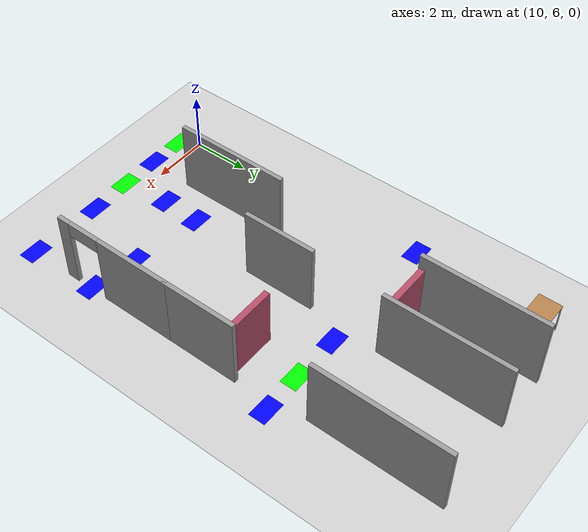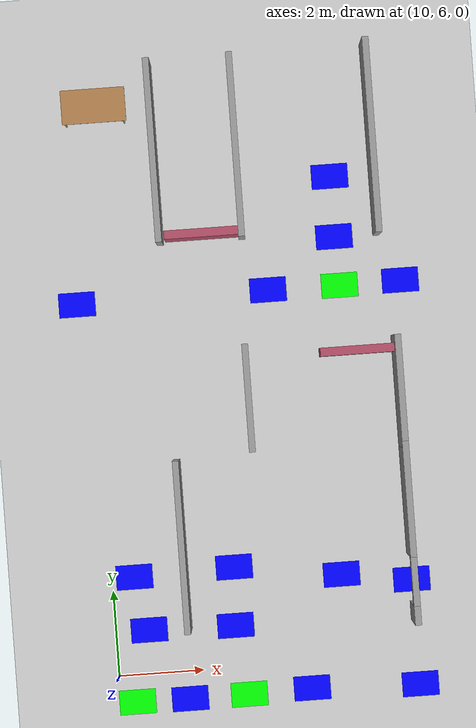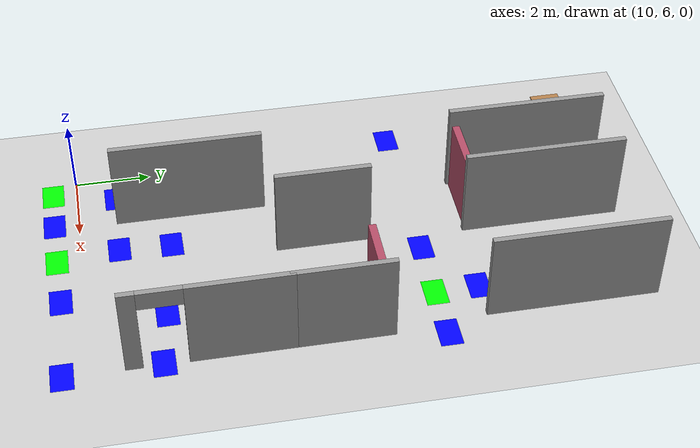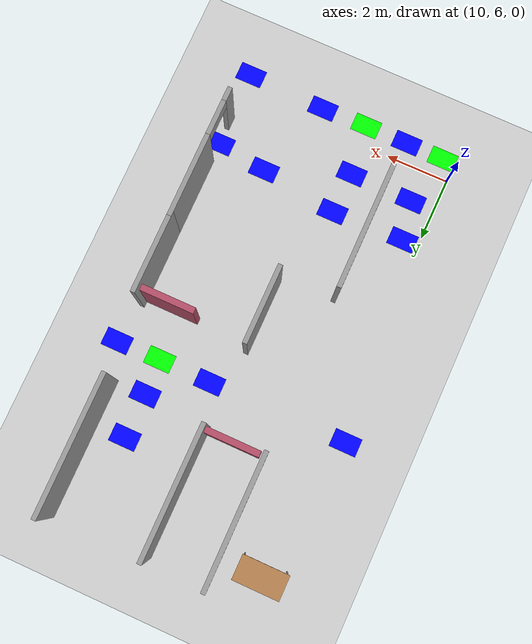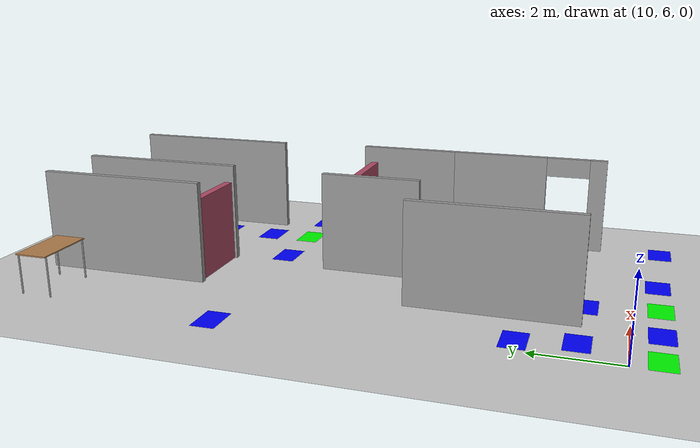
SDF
<sdf version="1.6">
 <world name="default">
  <model name="ground_plane">
   <pose>0 0 0.001 0 -0 0</pose>
   <static>1</static>
   <link name="link">
    <collision name="collision">
     <geometry><plane><normal>0 0 1</normal><size>100 100</size></plane></geometry>
     <surface><friction><ode><mu>100</mu><mu2>50</mu2></ode></friction></surface>
    </collision>
    <visual name="visual">
     <cast_shadows>0</cast_shadows>
     <geometry><plane><normal>0 0 1</normal><size>100 100</size></plane></geometry>
     <material>
      <script><uri>file://media/materials/scripts/gazebo.material</uri><name>Gazebo/Grey</name></script>
     </material>
    </visual>
   </link>
  </model>
  <model name="table_9">
   <static>1</static>
   <link name="link">
    <collision name="surface">
     <pose>0 0 1 0 -0 0</pose>
     <geometry><box><size>1.5 0.8 0.03</size></box></geometry>
     <surface><friction><ode><mu>0.6</mu><mu2>0.6</mu2></ode></friction></surface>
    </collision>
    <visual name="visual1">
     <pose>0 0 1 0 -0 0</pose>
     <geometry><box><size>1.5 0.8 0.03</size></box></geometry>
     <material>
      <script><uri>file://media/materials/scripts/gazebo.material</uri><name>Gazebo/Wood</name></script>
     </material>
    </visual>
    <collision name="front_left_leg">
     <pose>0.68 0.38 0.5 0 -0 0</pose>
     <geometry><cylinder><radius>0.02</radius><length>1</length></cylinder></geometry>
    </collision>
    <visual name="front_left_leg">
     <pose>0.68 0.38 0.5 0 -0 0</pose>
     <geometry><cylinder><radius>0.02</radius><length>1</length></cylinder></geometry>
     <material>
      <script><uri>file://media/materials/scripts/gazebo.material</uri><name>Gazebo/Grey</name></script>
     </material>
    </visual>
    <collision name="front_right_leg">
     <pose>0.68 -0.38 0.5 0 -0 0</pose>
     <geometry><cylinder><radius>0.02</radius><length>1</length></cylinder></geometry>
    </collision>
    <visual name="front_right_leg">
     <pose>0.68 -0.38 0.5 0 -0 0</pose>
     <geometry><cylinder><radius>0.02</radius><length>1</length></cylinder></geometry>
     <material>
      <script><uri>file://media/materials/scripts/gazebo.material</uri><name>Gazebo/Grey</name></script>
     </material>
    </visual>
    <collision name="back_right_leg">
     <pose>-0.68 -0.38 0.5 0 -0 0</pose>
     <geometry><cylinder><radius>0.02</radius><length>1</length></cylinder></geometry>
    </collision>
    <visual name="back_right_leg">
     <pose>-0.68 -0.38 0.5 0 -0 0</pose>
     <geometry><cylinder><radius>0.02</radius><length>1</length></cylinder></geometry>
     <material>
      <script><uri>file://media/materials/scripts/gazebo.material</uri><name>Gazebo/Grey</name></script>
     </material>
    </visual>
    <collision name="back_left_leg">
     <pose>-0.68 0.38 0.5 0 -0 0</pose>
     <geometry><cylinder><radius>0.02</radius><length>1</length></cylinder></geometry>
    </collision>
    <visual name="back_left_leg">
     <pose>-0.68 0.38 0.5 0 -0 0</pose>
     <geometry><cylinder><radius>0.02</radius><length>1</length></cylinder></geometry>
     <material>
      <script><uri>file://media/materials/scripts/gazebo.material</uri><name>Gazebo/Grey</name></script>
     </material>
    </visual>
   </link>
   <pose>10.3778 19.3786 0.001 0 -0 0</pose>
  </model>
  <model name="corridor_6">
   <link name="link">
    <pose>0 0 0.001 0 -0 0</pose>
    <inertial>
     <mass>0.0352517</mass>
     <inertia>
      <ixx>0.00099707</ixx>
      <ixy>0</ixy>
      <ixz>0</ixz>
      <iyy>0.00220147</iyy>
      <iyz>0</iyz>
      <izz>0.0031692</izz>
     </inertia>
     <pose>0 0 0.001 0 -0 0</pose>
    </inertial>
    <visual name="visual">
     <geometry><box><size>0.862743 0.578289 1e-06</size></box></geometry>
     <material>
      <script><name>Gazebo/Grey</name><uri>file://media/materials/scripts/gazebo.material</uri></script>
      <ambient>0 1 0 1</ambient>
      <diffuse>0 1 0 1</diffuse>
      <specular>0 1 0 1</specular>
      <emissive>0 1 0 1</emissive>
      <shader type="vertex"><normal_map>__default__</normal_map></shader>
     </material>
     <pose>0 0 0.001 0 -0 0</pose>
    </visual>
    <collision name="collision">
     <pose>0 0 0.001 0 -0 0</pose>
     <geometry><box><size>0.862743 0.578289 0.000477</size></box></geometry>
     <surface>
      <friction>
       <ode><mu>1</mu><mu2>1</mu2><fdir1>0 0 0</fdir1><slip1>0</slip1><slip2>0</slip2></ode>
       <torsional>
        <coefficient>1</coefficient>
        <patch_radius>0</patch_radius>
        <surface_radius>0</surface_radius>
        <use_patch_radius>1</use_patch_radius>
        <ode><slip>0</slip></ode>
       </torsional>
      </friction>
      <bounce><restitution_coefficient>0</restitution_coefficient><threshold>1e+06</threshold></bounce>
      <contact>
       <collide_without_contact>0</collide_without_contact>
       <collide_without_contact_bitmask>1</collide_without_contact_bitmask>
       <collide_bitmask>1</collide_bitmask>
       <ode>
        <soft_cfm>0</soft_cfm>
        <soft_erp>0.2</soft_erp>
        <kp>1e+13</kp>
        <kd>1</kd>
        <max_vel>0.01</max_vel>
        <min_depth>0</min_depth>
       </ode>
       <bullet>
        <split_impulse>1</split_impulse>
        <split_impulse_penetration_threshold>-0.01</split_impulse_penetration_threshold>
        <soft_cfm>0</soft_cfm>
        <soft_erp>0.2</soft_erp>
        <kp>1e+13</kp>
        <kd>1</kd>
       </bullet>
      </contact>
     </surface>
    </collision>
   </link>
   <static>1</static>
   <pose>15.8327 14.8096 0 0 -0 0</pose>
  </model>
  <model name="intersection_11">
   <link name="link">
    <pose>0 0 0.001 0 -0 0</pose>
    <inertial>
     <mass>0.0352517</mass>
     <inertia>
      <ixx>0.000997067</ixx>
      <ixy>0</ixy>
      <ixz>0</ixz>
      <iyy>0.00220147</iyy>
      <iyz>0</iyz>
      <izz>0.0031692</izz>
     </inertia>
     <pose>0 0 0.001 0 -0 0</pose>
    </inertial>
    <visual name="visual">
     <geometry><box><size>0.862743 0.578289 1e-06</size></box></geometry>
     <material>
      <script><name>Gazebo/Grey</name><uri>file://media/materials/scripts/gazebo.material</uri></script>
      <ambient>0 0 1 1</ambient>
      <diffuse>0 0 1 1</diffuse>
      <specular>0 0 1 1</specular>
      <emissive>0 0 1 1</emissive>
      <shader type="vertex"><normal_map>__default__</normal_map></shader>
     </material>
     <pose>0 0 0.001 0 -0 0</pose>
    </visual>
    <collision name="collision">
     <pose>0 0 0.001 0 -0 0</pose>
     <geometry><box><size>0.862743 0.578289 0.000477</size></box></geometry>
     <surface>
      <friction>
       <ode><mu>1</mu><mu2>1</mu2><fdir1>0 0 0</fdir1><slip1>0</slip1><slip2>0</slip2></ode>
       <torsional>
        <coefficient>1</coefficient>
        <patch_radius>0</patch_radius>
        <surface_radius>0</surface_radius>
        <use_patch_radius>1</use_patch_radius>
        <ode><slip>0</slip></ode>
       </torsional>
      </friction>
      <bounce><restitution_coefficient>0</restitution_coefficient><threshold>1e+06</threshold></bounce>
      <contact>
       <collide_without_contact>0</collide_without_contact>
       <collide_without_contact_bitmask>1</collide_without_contact_bitmask>
       <collide_bitmask>1</collide_bitmask>
       <ode>
        <soft_cfm>0</soft_cfm>
        <soft_erp>0.2</soft_erp>
        <kp>1e+13</kp>
        <kd>1</kd>
        <max_vel>0.01</max_vel>
        <min_depth>0</min_depth>
       </ode>
       <bullet>
        <split_impulse>1</split_impulse>
        <split_impulse_penetration_threshold>-0.01</split_impulse_penetration_threshold>
        <soft_cfm>0</soft_cfm>
        <soft_erp>0.2</soft_erp>
        <kp>1e+13</kp>
        <kd>1</kd>
       </bullet>
      </contact>
     </surface>
    </collision>
   </link>
   <static>1</static>
   <pose>15.7862 15.9606 0 0 -0 0</pose>
  </model>
  <model name="intersection_12">
   <link name="link">
    <pose>0 0 0.001 0 -0 0</pose>
    <inertial>
     <mass>0.0352517</mass>
     <inertia>
      <ixx>0.000997067</ixx>
      <ixy>0</ixy>
      <ixz>0</ixz>
      <iyy>0.00220147</iyy>
      <iyz>0</iyz>
      <izz>0.0031692</izz>
     </inertia>
     <pose>0 0 0.001 0 -0 0</pose>
    </inertial>
    <visual name="visual">
     <geometry><box><size>0.862743 0.578289 1e-06</size></box></geometry>
     <material>
      <script><name>Gazebo/Grey</name><uri>file://media/materials/scripts/gazebo.material</uri></script>
      <ambient>0 0 1 1</ambient>
      <diffuse>0 0 1 1</diffuse>
      <specular>0 0 1 1</specular>
      <emissive>0 0 1 1</emissive>
      <shader type="vertex"><normal_map>__default__</normal_map></shader>
     </material>
     <pose>0 0 0.001 0 -0 0</pose>
    </visual>
    <collision name="collision">
     <pose>0 0 0.001 0 -0 0</pose>
     <geometry><box><size>0.862743 0.578289 0.000477</size></box></geometry>
     <surface>
      <friction>
       <ode><mu>1</mu><mu2>1</mu2><fdir1>0 0 0</fdir1><slip1>0</slip1><slip2>0</slip2></ode>
       <torsional>
        <coefficient>1</coefficient>
        <patch_radius>0</patch_radius>
        <surface_radius>0</surface_radius>
        <use_patch_radius>1</use_patch_radius>
        <ode><slip>0</slip></ode>
       </torsional>
      </friction>
      <bounce><restitution_coefficient>0</restitution_coefficient><threshold>1e+06</threshold></bounce>
      <contact>
       <collide_without_contact>0</collide_without_contact>
       <collide_without_contact_bitmask>1</collide_without_contact_bitmask>
       <collide_bitmask>1</collide_bitmask>
       <ode>
        <soft_cfm>0</soft_cfm>
        <soft_erp>0.2</soft_erp>
        <kp>1e+13</kp>
        <kd>1</kd>
        <max_vel>0.01</max_vel>
        <min_depth>0</min_depth>
       </ode>
       <bullet>
        <split_impulse>1</split_impulse>
        <split_impulse_penetration_threshold>-0.01</split_impulse_penetration_threshold>
        <soft_cfm>0</soft_cfm>
        <soft_erp>0.2</soft_erp>
        <kp>1e+13</kp>
        <kd>1</kd>
       </bullet>
      </contact>
     </surface>
    </collision>
   </link>
   <static>1</static>
   <pose>17.0289 7.78146 0 0 -0 0</pose>
  </model>
  <model name="intersection_14">
   <link name="link">
    <pose>0 0 0.001 0 -0 0</pose>
    <inertial>
     <mass>0.0352517</mass>
     <inertia>
      <ixx>0.000997067</ixx>
      <ixy>0</ixy>
      <ixz>0</ixz>
      <iyy>0.00220147</iyy>
      <iyz>0</iyz>
      <izz>0.0031692</izz>
     </inertia>
     <pose>0 0 0.001 0 -0 0</pose>
    </inertial>
    <visual name="visual">
     <geometry><box><size>0.862743 0.578289 1e-06</size></box></geometry>
     <material>
      <script><name>Gazebo/Grey</name><uri>file://media/materials/scripts/gazebo.material</uri></script>
      <ambient>0 0 1 1</ambient>
      <diffuse>0 0 1 1</diffuse>
      <specular>0 0 1 1</specular>
      <emissive>0 0 1 1</emissive>
      <shader type="vertex"><normal_map>__default__</normal_map></shader>
     </material>
     <pose>0 0 0.001 0 -0 0</pose>
    </visual>
    <collision name="collision">
     <pose>0 0 0.001 0 -0 0</pose>
     <geometry><box><size>0.862743 0.578289 0.000477</size></box></geometry>
     <surface>
      <friction>
       <ode><mu>1</mu><mu2>1</mu2><fdir1>0 0 0</fdir1><slip1>0</slip1><slip2>0</slip2></ode>
       <torsional>
        <coefficient>1</coefficient>
        <patch_radius>0</patch_radius>
        <surface_radius>0</surface_radius>
        <use_patch_radius>1</use_patch_radius>
        <ode><slip>0</slip></ode>
       </torsional>
      </friction>
      <bounce><restitution_coefficient>0</restitution_coefficient><threshold>1e+06</threshold></bounce>
      <contact>
       <collide_without_contact>0</collide_without_contact>
       <collide_without_contact_bitmask>1</collide_without_contact_bitmask>
       <collide_bitmask>1</collide_bitmask>
       <ode>
        <soft_cfm>0</soft_cfm>
        <soft_erp>0.2</soft_erp>
        <kp>1e+13</kp>
        <kd>1</kd>
        <max_vel>0.01</max_vel>
        <min_depth>0</min_depth>
       </ode>
       <bullet>
        <split_impulse>1</split_impulse>
        <split_impulse_penetration_threshold>-0.01</split_impulse_penetration_threshold>
        <soft_cfm>0</soft_cfm>
        <soft_erp>0.2</soft_erp>
        <kp>1e+13</kp>
        <kd>1</kd>
       </bullet>
      </contact>
     </surface>
    </collision>
   </link>
   <static>1</static>
   <pose>12.8142 6.98995 0 0 -0 0</pose>
  </model>
  <model name="intersection_19">
   <link name="link">
    <pose>0 0 0.001 0 -0 0</pose>
    <inertial>
     <mass>0.0352517</mass>
     <inertia>
      <ixx>0.000997067</ixx>
      <ixy>0</ixy>
      <ixz>0</ixz>
      <iyy>0.00220147</iyy>
      <iyz>0</iyz>
      <izz>0.0031692</izz>
     </inertia>
     <pose>0 0 0.001 0 -0 0</pose>
    </inertial>
    <visual name="visual">
     <geometry><box><size>0.862743 0.578289 1e-06</size></box></geometry>
     <material>
      <script><name>Gazebo/Grey</name><uri>file://media/materials/scripts/gazebo.material</uri></script>
      <ambient>0 0 1 1</ambient>
      <diffuse>0 0 1 1</diffuse>
      <specular>0 0 1 1</specular>
      <emissive>0 0 1 1</emissive>
      <shader type="vertex"><normal_map>__default__</normal_map></shader>
     </material>
     <pose>0 0 0.001 0 -0 0</pose>
    </visual>
    <collision name="collision">
     <pose>0 0 0.001 0 -0 0</pose>
     <geometry><box><size>0.862743 0.578289 0.000477</size></box></geometry>
     <surface>
      <friction>
       <ode><mu>1</mu><mu2>1</mu2><fdir1>0 0 0</fdir1><slip1>0</slip1><slip2>0</slip2></ode>
       <torsional>
        <coefficient>1</coefficient>
        <patch_radius>0</patch_radius>
        <surface_radius>0</surface_radius>
        <use_patch_radius>1</use_patch_radius>
        <ode><slip>0</slip></ode>
       </torsional>
      </friction>
      <bounce><restitution_coefficient>0</restitution_coefficient><threshold>1e+06</threshold></bounce>
      <contact>
       <collide_without_contact>0</collide_without_contact>
       <collide_without_contact_bitmask>1</collide_without_contact_bitmask>
       <collide_bitmask>1</collide_bitmask>
       <ode>
        <soft_cfm>0</soft_cfm>
        <soft_erp>0.2</soft_erp>
        <kp>1e+13</kp>
        <kd>1</kd>
        <max_vel>0.01</max_vel>
        <min_depth>0</min_depth>
       </ode>
       <bullet>
        <split_impulse>1</split_impulse>
        <split_impulse_penetration_threshold>-0.01</split_impulse_penetration_threshold>
        <soft_cfm>0</soft_cfm>
        <soft_erp>0.2</soft_erp>
        <kp>1e+13</kp>
        <kd>1</kd>
       </bullet>
      </contact>
     </surface>
    </collision>
   </link>
   <static>1</static>
   <pose>10.7757 7.03031 0 0 -0 0</pose>
  </model>
  <model name="corridor_7">
   <link name="link">
    <pose>0 0 0.001 0 -0 0</pose>
    <inertial>
     <mass>0.0352517</mass>
     <inertia>
      <ixx>0.00099707</ixx>
      <ixy>0</ixy>
      <ixz>0</ixz>
      <iyy>0.00220147</iyy>
      <iyz>0</iyz>
      <izz>0.0031692</izz>
     </inertia>
     <pose>0 0 0.001 0 -0 0</pose>
    </inertial>
    <visual name="visual">
     <geometry><box><size>0.862743 0.578289 1e-06</size></box></geometry>
     <material>
      <script><name>Gazebo/Grey</name><uri>file://media/materials/scripts/gazebo.material</uri></script>
      <ambient>0 1 0 1</ambient>
      <diffuse>0 1 0 1</diffuse>
      <specular>0 1 0 1</specular>
      <emissive>0 1 0 1</emissive>
      <shader type="vertex"><normal_map>__default__</normal_map></shader>
     </material>
     <pose>0 0 0.001 0 -0 0</pose>
    </visual>
    <collision name="collision">
     <pose>0 0 0.001 0 -0 0</pose>
     <geometry><box><size>0.862743 0.578289 0.000477</size></box></geometry>
     <surface>
      <friction>
       <ode><mu>1</mu><mu2>1</mu2><fdir1>0 0 0</fdir1><slip1>0</slip1><slip2>0</slip2></ode>
       <torsional>
        <coefficient>1</coefficient>
        <patch_radius>0</patch_radius>
        <surface_radius>0</surface_radius>
        <use_patch_radius>1</use_patch_radius>
        <ode><slip>0</slip></ode>
       </torsional>
      </friction>
      <bounce><restitution_coefficient>0</restitution_coefficient><threshold>1e+06</threshold></bounce>
      <contact>
       <collide_without_contact>0</collide_without_contact>
       <collide_without_contact_bitmask>1</collide_without_contact_bitmask>
       <collide_bitmask>1</collide_bitmask>
       <ode>
        <soft_cfm>0</soft_cfm>
        <soft_erp>0.2</soft_erp>
        <kp>1e+13</kp>
        <kd>1</kd>
        <max_vel>0.01</max_vel>
        <min_depth>0</min_depth>
       </ode>
       <bullet>
        <split_impulse>1</split_impulse>
        <split_impulse_penetration_threshold>-0.01</split_impulse_penetration_threshold>
        <soft_cfm>0</soft_cfm>
        <soft_erp>0.2</soft_erp>
        <kp>1e+13</kp>
        <kd>1</kd>
       </bullet>
      </contact>
     </surface>
    </collision>
   </link>
   <static>1</static>
   <pose>10.3849 5.35999 0 0 -0 0</pose>
  </model>
  <model name="corridor_8">
   <link name="link">
    <pose>0 0 0.001 0 -0 0</pose>
    <inertial>
     <mass>0.0352517</mass>
     <inertia>
      <ixx>0.00099707</ixx>
      <ixy>0</ixy>
      <ixz>0</ixz>
      <iyy>0.00220147</iyy>
      <iyz>0</iyz>
      <izz>0.0031692</izz>
     </inertia>
     <pose>0 0 0.001 0 -0 0</pose>
    </inertial>
    <visual name="visual">
     <geometry><box><size>0.862743 0.578289 1e-06</size></box></geometry>
     <material>
      <script><name>Gazebo/Grey</name><uri>file://media/materials/scripts/gazebo.material</uri></script>
      <ambient>0 1 0 1</ambient>
      <diffuse>0 1 0 1</diffuse>
      <specular>0 1 0 1</specular>
      <emissive>0 1 0 1</emissive>
      <shader type="vertex"><normal_map>__default__</normal_map></shader>
     </material>
     <pose>0 0 0.001 0 -0 0</pose>
    </visual>
    <collision name="collision">
     <pose>0 0 0.001 0 -0 0</pose>
     <geometry><box><size>0.862743 0.578289 0.000477</size></box></geometry>
     <surface>
      <friction>
       <ode><mu>1</mu><mu2>1</mu2><fdir1>0 0 0</fdir1><slip1>0</slip1><slip2>0</slip2></ode>
       <torsional>
        <coefficient>1</coefficient>
        <patch_radius>0</patch_radius>
        <surface_radius>0</surface_radius>
        <use_patch_radius>1</use_patch_radius>
        <ode><slip>0</slip></ode>
       </torsional>
      </friction>
      <bounce><restitution_coefficient>0</restitution_coefficient><threshold>1e+06</threshold></bounce>
      <contact>
       <collide_without_contact>0</collide_without_contact>
       <collide_without_contact_bitmask>1</collide_without_contact_bitmask>
       <collide_bitmask>1</collide_bitmask>
       <ode>
        <soft_cfm>0</soft_cfm>
        <soft_erp>0.2</soft_erp>
        <kp>1e+13</kp>
        <kd>1</kd>
        <max_vel>0.01</max_vel>
        <min_depth>0</min_depth>
       </ode>
       <bullet>
        <split_impulse>1</split_impulse>
        <split_impulse_penetration_threshold>-0.01</split_impulse_penetration_threshold>
        <soft_cfm>0</soft_cfm>
        <soft_erp>0.2</soft_erp>
        <kp>1e+13</kp>
        <kd>1</kd>
       </bullet>
      </contact>
     </surface>
    </collision>
   </link>
   <static>1</static>
   <pose>13.022 5.35184 0 0 -0 0</pose>
  </model>
  <model name="intersection_7">
   <link name="link">
    <pose>0 0 0.001 0 -0 0</pose>
    <inertial>
     <mass>0.0352517</mass>
     <inertia>
      <ixx>0.000997067</ixx>
      <ixy>0</ixy>
      <ixz>0</ixz>
      <iyy>0.00220147</iyy>
      <iyz>0</iyz>
      <izz>0.0031692</izz>
     </inertia>
     <pose>0 0 0.001 0 -0 0</pose>
    </inertial>
    <visual name="visual">
     <geometry><box><size>0.862743 0.578289 1e-06</size></box></geometry>
     <material>
      <script><name>Gazebo/Grey</name><uri>file://media/materials/scripts/gazebo.material</uri></script>
      <ambient>0 0 1 1</ambient>
      <diffuse>0 0 1 1</diffuse>
      <specular>0 0 1 1</specular>
      <emissive>0 0 1 1</emissive>
      <shader type="vertex"><normal_map>__default__</normal_map></shader>
     </material>
     <pose>0 0 0.001 0 -0 0</pose>
    </visual>
    <collision name="collision">
     <pose>0 0 0.001 0 -0 0</pose>
     <geometry><box><size>0.862743 0.578289 0.000477</size></box></geometry>
     <surface>
      <friction>
       <ode><mu>1</mu><mu2>1</mu2><fdir1>0 0 0</fdir1><slip1>0</slip1><slip2>0</slip2></ode>
       <torsional>
        <coefficient>1</coefficient>
        <patch_radius>0</patch_radius>
        <surface_radius>0</surface_radius>
        <use_patch_radius>1</use_patch_radius>
        <ode><slip>0</slip></ode>
       </torsional>
      </friction>
      <bounce><restitution_coefficient>0</restitution_coefficient><threshold>1e+06</threshold></bounce>
      <contact>
       <collide_without_contact>0</collide_without_contact>
       <collide_without_contact_bitmask>1</collide_without_contact_bitmask>
       <collide_bitmask>1</collide_bitmask>
       <ode>
        <soft_cfm>0</soft_cfm>
        <soft_erp>0.2</soft_erp>
        <kp>1e+13</kp>
        <kd>1</kd>
        <max_vel>0.01</max_vel>
        <min_depth>0</min_depth>
       </ode>
       <bullet>
        <split_impulse>1</split_impulse>
        <split_impulse_penetration_threshold>-0.01</split_impulse_penetration_threshold>
        <soft_cfm>0</soft_cfm>
        <soft_erp>0.2</soft_erp>
        <kp>1e+13</kp>
        <kd>1</kd>
       </bullet>
      </contact>
     </surface>
    </collision>
   </link>
   <static>1</static>
   <pose>14.5085 5.39019 0 0 -0 0</pose>
  </model>
  <model name="intersection_21">
   <link name="link">
    <pose>0 0 0.001 0 -0 0</pose>
    <inertial>
     <mass>0.0352517</mass>
     <inertia>
      <ixx>0.000997067</ixx>
      <ixy>0</ixy>
      <ixz>0</ixz>
      <iyy>0.00220147</iyy>
      <iyz>0</iyz>
      <izz>0.0031692</izz>
     </inertia>
     <pose>0 0 0.001 0 -0 0</pose>
    </inertial>
    <visual name="visual">
     <geometry><box><size>0.862743 0.578289 1e-06</size></box></geometry>
     <material>
      <script><name>Gazebo/Grey</name><uri>file://media/materials/scripts/gazebo.material</uri></script>
      <ambient>0 0 1 1</ambient>
      <diffuse>0 0 1 1</diffuse>
      <specular>0 0 1 1</specular>
      <emissive>0 0 1 1</emissive>
      <shader type="vertex"><normal_map>__default__</normal_map></shader>
     </material>
     <pose>0 0 0.001 0 -0 0</pose>
    </visual>
    <collision name="collision">
     <pose>0 0 0.001 0 -0 0</pose>
     <geometry><box><size>0.862743 0.578289 0.000477</size></box></geometry>
     <surface>
      <friction>
       <ode><mu>1</mu><mu2>1</mu2><fdir1>0 0 0</fdir1><slip1>0</slip1><slip2>0</slip2></ode>
       <torsional>
        <coefficient>1</coefficient>
        <patch_radius>0</patch_radius>
        <surface_radius>0</surface_radius>
        <use_patch_radius>1</use_patch_radius>
        <ode><slip>0</slip></ode>
       </torsional>
      </friction>
      <bounce><restitution_coefficient>0</restitution_coefficient><threshold>1e+06</threshold></bounce>
      <contact>
       <collide_without_contact>0</collide_without_contact>
       <collide_without_contact_bitmask>1</collide_without_contact_bitmask>
       <collide_bitmask>1</collide_bitmask>
       <ode>
        <soft_cfm>0</soft_cfm>
        <soft_erp>0.2</soft_erp>
        <kp>1e+13</kp>
        <kd>1</kd>
        <max_vel>0.01</max_vel>
        <min_depth>0</min_depth>
       </ode>
       <bullet>
        <split_impulse>1</split_impulse>
        <split_impulse_penetration_threshold>-0.01</split_impulse_penetration_threshold>
        <soft_cfm>0</soft_cfm>
        <soft_erp>0.2</soft_erp>
        <kp>1e+13</kp>
        <kd>1</kd>
       </bullet>
      </contact>
     </surface>
    </collision>
   </link>
   <static>1</static>
   <pose>11.6248 5.3471 0 0 -0 0</pose>
  </model>
  <model name="intersection_47">
   <link name="link">
    <pose>0 0 0.001 0 -0 0</pose>
    <inertial>
     <mass>0.0352517</mass>
     <inertia>
      <ixx>0.000997067</ixx>
      <ixy>0</ixy>
      <ixz>0</ixz>
      <iyy>0.00220147</iyy>
      <iyz>0</iyz>
      <izz>0.0031692</izz>
     </inertia>
     <pose>0 0 0.001 0 -0 0</pose>
    </inertial>
    <visual name="visual">
     <geometry><box><size>0.862743 0.578289 1e-06</size></box></geometry>
     <material>
      <script><name>Gazebo/Grey</name><uri>file://media/materials/scripts/gazebo.material</uri></script>
      <ambient>0 0 1 1</ambient>
      <diffuse>0 0 1 1</diffuse>
      <specular>0 0 1 1</specular>
      <emissive>0 0 1 1</emissive>
      <shader type="vertex"><normal_map>__default__</normal_map></shader>
     </material>
     <pose>0 0 0.001 0 -0 0</pose>
    </visual>
    <collision name="collision">
     <pose>0 0 0.001 0 -0 0</pose>
     <geometry><box><size>0.862743 0.578289 0.000477</size></box></geometry>
     <surface>
      <friction>
       <ode><mu>1</mu><mu2>1</mu2><fdir1>0 0 0</fdir1><slip1>0</slip1><slip2>0</slip2></ode>
       <torsional>
        <coefficient>1</coefficient>
        <patch_radius>0</patch_radius>
        <surface_radius>0</surface_radius>
        <use_patch_radius>1</use_patch_radius>
        <ode><slip>0</slip></ode>
       </torsional>
      </friction>
      <bounce><restitution_coefficient>0</restitution_coefficient><threshold>1e+06</threshold></bounce>
      <contact>
       <collide_without_contact>0</collide_without_contact>
       <collide_without_contact_bitmask>1</collide_without_contact_bitmask>
       <collide_bitmask>1</collide_bitmask>
       <ode>
        <soft_cfm>0</soft_cfm>
        <soft_erp>0.2</soft_erp>
        <kp>1e+13</kp>
        <kd>1</kd>
        <max_vel>0.01</max_vel>
        <min_depth>0</min_depth>
       </ode>
       <bullet>
        <split_impulse>1</split_impulse>
        <split_impulse_penetration_threshold>-0.01</split_impulse_penetration_threshold>
        <soft_cfm>0</soft_cfm>
        <soft_erp>0.2</soft_erp>
        <kp>1e+13</kp>
        <kd>1</kd>
       </bullet>
      </contact>
     </surface>
    </collision>
   </link>
   <static>1</static>
   <pose>17.0607 5.30445 0 0 -0 0</pose>
  </model>
  <model name="intersection_48">
   <link name="link">
    <pose>0 0 0.001 0 -0 0</pose>
    <inertial>
     <mass>0.0352517</mass>
     <inertia>
      <ixx>0.000997067</ixx>
      <ixy>0</ixy>
      <ixz>0</ixz>
      <iyy>0.00220147</iyy>
      <iyz>0</iyz>
      <izz>0.0031692</izz>
     </inertia>
     <pose>0 0 0.001 0 -0 0</pose>
    </inertial>
    <visual name="visual">
     <geometry><box><size>0.862743 0.578289 1e-06</size></box></geometry>
     <material>
      <script><name>Gazebo/Grey</name><uri>file://media/materials/scripts/gazebo.material</uri></script>
      <ambient>0 0 1 1</ambient>
      <diffuse>0 0 1 1</diffuse>
      <specular>0 0 1 1</specular>
      <emissive>0 0 1 1</emissive>
      <shader type="vertex"><normal_map>__default__</normal_map></shader>
     </material>
     <pose>0 0 0.001 0 -0 0</pose>
    </visual>
    <collision name="collision">
     <pose>0 0 0.001 0 -0 0</pose>
     <geometry><box><size>0.862743 0.578289 0.000477</size></box></geometry>
     <surface>
      <friction>
       <ode><mu>1</mu><mu2>1</mu2><fdir1>0 0 0</fdir1><slip1>0</slip1><slip2>0</slip2></ode>
       <torsional>
        <coefficient>1</coefficient>
        <patch_radius>0</patch_radius>
        <surface_radius>0</surface_radius>
        <use_patch_radius>1</use_patch_radius>
        <ode><slip>0</slip></ode>
       </torsional>
      </friction>
      <bounce><restitution_coefficient>0</restitution_coefficient><threshold>1e+06</threshold></bounce>
      <contact>
       <collide_without_contact>0</collide_without_contact>
       <collide_without_contact_bitmask>1</collide_without_contact_bitmask>
       <collide_bitmask>1</collide_bitmask>
       <ode>
        <soft_cfm>0</soft_cfm>
        <soft_erp>0.2</soft_erp>
        <kp>1e+13</kp>
        <kd>1</kd>
        <max_vel>0.01</max_vel>
        <min_depth>0</min_depth>
       </ode>
       <bullet>
        <split_impulse>1</split_impulse>
        <split_impulse_penetration_threshold>-0.01</split_impulse_penetration_threshold>
        <soft_cfm>0</soft_cfm>
        <soft_erp>0.2</soft_erp>
        <kp>1e+13</kp>
        <kd>1</kd>
       </bullet>
      </contact>
     </surface>
    </collision>
   </link>
   <static>1</static>
   <pose>17.2674 14.8287 0 0 -0 0</pose>
  </model>
  <model name="intersection_49">
   <link name="link">
    <pose>0 0 0.001 0 -0 0</pose>
    <inertial>
     <mass>0.0352517</mass>
     <inertia>
      <ixx>0.000997067</ixx>
      <ixy>0</ixy>
      <ixz>0</ixz>
      <iyy>0.00220147</iyy>
      <iyz>0</iyz>
      <izz>0.0031692</izz>
     </inertia>
     <pose>0 0 0.001 0 -0 0</pose>
    </inertial>
    <visual name="visual">
     <geometry><box><size>0.862743 0.578289 1e-06</size></box></geometry>
     <material>
      <script><name>Gazebo/Grey</name><uri>file://media/materials/scripts/gazebo.material</uri></script>
      <ambient>0 0 1 1</ambient>
      <diffuse>0 0 1 1</diffuse>
      <specular>0 0 1 1</specular>
      <emissive>0 0 1 1</emissive>
      <shader type="vertex"><normal_map>__default__</normal_map></shader>
     </material>
     <pose>0 0 0.001 0 -0 0</pose>
    </visual>
    <collision name="collision">
     <pose>0 0 0.001 0 -0 0</pose>
     <geometry><box><size>0.862743 0.578289 0.000477</size></box></geometry>
     <surface>
      <friction>
       <ode><mu>1</mu><mu2>1</mu2><fdir1>0 0 0</fdir1><slip1>0</slip1><slip2>0</slip2></ode>
       <torsional>
        <coefficient>1</coefficient>
        <patch_radius>0</patch_radius>
        <surface_radius>0</surface_radius>
        <use_patch_radius>1</use_patch_radius>
        <ode><slip>0</slip></ode>
       </torsional>
      </friction>
      <bounce><restitution_coefficient>0</restitution_coefficient><threshold>1e+06</threshold></bounce>
      <contact>
       <collide_without_contact>0</collide_without_contact>
       <collide_without_contact_bitmask>1</collide_without_contact_bitmask>
       <collide_bitmask>1</collide_bitmask>
       <ode>
        <soft_cfm>0</soft_cfm>
        <soft_erp>0.2</soft_erp>
        <kp>1e+13</kp>
        <kd>1</kd>
        <max_vel>0.01</max_vel>
        <min_depth>0</min_depth>
       </ode>
       <bullet>
        <split_impulse>1</split_impulse>
        <split_impulse_penetration_threshold>-0.01</split_impulse_penetration_threshold>
        <soft_cfm>0</soft_cfm>
        <soft_erp>0.2</soft_erp>
        <kp>1e+13</kp>
        <kd>1</kd>
       </bullet>
      </contact>
     </surface>
    </collision>
   </link>
   <static>1</static>
   <pose>14.1447 14.8229 0 0 -0 0</pose>
  </model>
  <model name="intersection_50">
   <link name="link">
    <pose>0 0 0.001 0 -0 0</pose>
    <inertial>
     <mass>0.0352517</mass>
     <inertia>
      <ixx>0.000997067</ixx>
      <ixy>0</ixy>
      <ixz>0</ixz>
      <iyy>0.00220147</iyy>
      <iyz>0</iyz>
      <izz>0.0031692</izz>
     </inertia>
     <pose>0 0 0.001 0 -0 0</pose>
    </inertial>
    <visual name="visual">
     <geometry><box><size>0.862743 0.578289 1e-06</size></box></geometry>
     <material>
      <script><name>Gazebo/Grey</name><uri>file://media/materials/scripts/gazebo.material</uri></script>
      <ambient>0 0 1 1</ambient>
      <diffuse>0 0 1 1</diffuse>
      <specular>0 0 1 1</specular>
      <emissive>0 0 1 1</emissive>
      <shader type="vertex"><normal_map>__default__</normal_map></shader>
     </material>
     <pose>0 0 0.001 0 -0 0</pose>
    </visual>
    <collision name="collision">
     <pose>0 0 0.001 0 -0 0</pose>
     <geometry><box><size>0.862743 0.578289 0.000477</size></box></geometry>
     <surface>
      <friction>
       <ode><mu>1</mu><mu2>1</mu2><fdir1>0 0 0</fdir1><slip1>0</slip1><slip2>0</slip2></ode>
       <torsional>
        <coefficient>1</coefficient>
        <patch_radius>0</patch_radius>
        <surface_radius>0</surface_radius>
        <use_patch_radius>1</use_patch_radius>
        <ode><slip>0</slip></ode>
       </torsional>
      </friction>
      <bounce><restitution_coefficient>0</restitution_coefficient><threshold>1e+06</threshold></bounce>
      <contact>
       <collide_without_contact>0</collide_without_contact>
       <collide_without_contact_bitmask>1</collide_without_contact_bitmask>
       <collide_bitmask>1</collide_bitmask>
       <ode>
        <soft_cfm>0</soft_cfm>
        <soft_erp>0.2</soft_erp>
        <kp>1e+13</kp>
        <kd>1</kd>
        <max_vel>0.01</max_vel>
        <min_depth>0</min_depth>
       </ode>
       <bullet>
        <split_impulse>1</split_impulse>
        <split_impulse_penetration_threshold>-0.01</split_impulse_penetration_threshold>
        <soft_cfm>0</soft_cfm>
        <soft_erp>0.2</soft_erp>
        <kp>1e+13</kp>
        <kd>1</kd>
       </bullet>
      </contact>
     </surface>
    </collision>
   </link>
   <static>1</static>
   <pose>9.63102 14.7946 0.001956 0 -0 0</pose>
  </model>
  <model name="Se1_cut">
   <pose>3.62364 13.9276 0 0 -0 0</pose>
   <link name="Wall_13">
    <pose>13.3997 -4.96918 0 0 0 -1.5708</pose>
    <visual name="Wall_13_Visual_0">
     <pose>-0.786431 0 1.25 0 -0 0</pose>
     <geometry><box><size>2.67714 0.15 2.5</size></box></geometry>
     <material>
      <script><uri>file://media/materials/scripts/gazebo.material</uri><name>Gazebo/Grey</name></script>
      <ambient>1 1 1 1</ambient>
     </material>
    </visual>
    <collision name="Wall_13_Collision_0">
     <geometry><box><size>2.67714 0.15 2.5</size></box></geometry>
     <pose>-0.786431 0 1.25 0 -0 0</pose>
    </collision>
    <visual name="Wall_13_Visual_1">
     <pose>1.90422 0 1.25 0 -0 0</pose>
     <geometry><box><size>0.441555 0.15 2.5</size></box></geometry>
     <material>
      <script><uri>file://media/materials/scripts/gazebo.material</uri><name>Gazebo/Grey</name></script>
      <ambient>1 1 1 1</ambient>
     </material>
    </visual>
    <collision name="Wall_13_Collision_1">
     <geometry><box><size>0.441555 0.15 2.5</size></box></geometry>
     <pose>1.90422 0 1.25 0 -0 0</pose>
    </collision>
    <visual name="Wall_13_Visual_2">
     <pose>1.11779 0 2.25 0 -0 0</pose>
     <geometry><box><size>1.13131 0.15 0.5</size></box></geometry>
     <material>
      <script><uri>file://media/materials/scripts/gazebo.material</uri><name>Gazebo/Grey</name></script>
      <ambient>1 1 1 1</ambient>
     </material>
    </visual>
    <collision name="Wall_13_Collision_2">
     <geometry><box><size>1.13131 0.15 0.5</size></box></geometry>
     <pose>1.11779 0 2.25 0 -0 0</pose>
    </collision>
   </link>
   <link name="Wall_16">
    <collision name="Wall_16_Collision">
     <geometry><box><size>2.61111 0.15 2.5</size></box></geometry>
     <pose>0 0 1.25 0 -0 0</pose>
    </collision>
    <visual name="Wall_16_Visual">
     <pose>0 0 1.25 0 -0 0</pose>
     <geometry><box><size>2.61111 0.15 2.5</size></box></geometry>
     <material>
      <script><uri>file://media/materials/scripts/gazebo.material</uri><name>Gazebo/Grey</name></script>
      <ambient>1 1 1 1</ambient>
     </material>
    </visual>
    <pose>13.3997 -1.68863 0 0 0 -1.5708</pose>
   </link>
   <link name="Wall_41">
    <collision name="Wall_41_Collision">
     <geometry><box><size>2.5 0.15 2.5</size></box></geometry>
     <pose>0 0 1.25 0 -0 0</pose>
    </collision>
    <visual name="Wall_41_Visual">
     <pose>0 0 1.25 0 -0 0</pose>
     <geometry><box><size>2.5 0.15 2.5</size></box></geometry>
     <material>
      <script><uri>file://media/materials/scripts/gazebo.material</uri><name>Gazebo/Grey</name></script>
      <ambient>1 1 1 1</ambient>
     </material>
    </visual>
    <pose>9.879 -1.60352 0 0 0 -1.5708</pose>
   </link>
   <link name="Wall_47">
    <collision name="Wall_47_Collision">
     <geometry><box><size>4.5 0.15 2.5</size></box></geometry>
     <pose>0 0 1.25 0 -0 0</pose>
    </collision>
    <visual name="Wall_47_Visual">
     <pose>0 0 1.25 0 -0 0</pose>
     <geometry><box><size>4.5 0.15 2.5</size></box></geometry>
     <material>
      <script><uri>file://media/materials/scripts/gazebo.material</uri><name>Gazebo/Grey</name></script>
      <ambient>1 1 1 1</ambient>
     </material>
    </visual>
    <pose>13.1471 4.23874 0 0 -0 1.5708</pose>
   </link>
   <link name="Wall_61">
    <collision name="Wall_61_Collision">
     <geometry><box><size>4.25 0.15 2.5</size></box></geometry>
     <pose>0 0 1.25 0 -0 0</pose>
    </collision>
    <visual name="Wall_61_Visual">
     <pose>0 0 1.25 0 -0 0</pose>
     <geometry><box><size>4.25 0.15 2.5</size></box></geometry>
     <material>
      <script><uri>file://media/materials/scripts/gazebo.material</uri><name>Gazebo/Grey</name></script>
      <ambient>1 1 1 1</ambient>
     </material>
    </visual>
    <pose>8.07671 4.24479 0 0 0 -1.5708</pose>
   </link>
   <link name="Wall_63">
    <collision name="Wall_63_Collision">
     <geometry><box><size>4.25 0.15 2.5</size></box></geometry>
     <pose>0 0 1.25 0 -0 0</pose>
    </collision>
    <visual name="Wall_63_Visual">
     <pose>0 0 1.25 0 -0 0</pose>
     <geometry><box><size>4.25 0.15 2.5</size></box></geometry>
     <material>
      <script><uri>file://media/materials/scripts/gazebo.material</uri><name>Gazebo/Grey</name></script>
      <ambient>1 1 1 1</ambient>
     </material>
    </visual>
    <pose>9.99193 4.24479 0 0 0 -1.5708</pose>
   </link>
   <link name="Wall_99">
    <collision name="Wall_99_Collision">
     <geometry><box><size>4 0.15 2.5</size></box></geometry>
     <pose>0 0 1.25 0 -0 0</pose>
    </collision>
    <visual name="Wall_99_Visual">
     <pose>0 0 1.25 0 -0 0</pose>
     <geometry><box><size>4 0.15 2.5</size></box></geometry>
     <material>
      <script><uri>file://media/materials/scripts/gazebo.material</uri><name>Gazebo/Grey</name></script>
      <ambient>1 1 1 1</ambient>
     </material>
    </visual>
    <pose>8.09364 -4.92707 0 0 0 -1.5708</pose>
   </link>
   <static>1</static>
  </model>
  <model name="doorOutside_5_clone">
   <link name="link">
    <pose>0.155539 -0.366282 0.216958 0 -0 0</pose>
    <inertial>
     <mass>2.13199</mass>
     <inertia>
      <ixx>0.452656</ixx>
      <ixy>0</ixy>
      <ixz>0</ixz>
      <iyy>0.796738</iyy>
      <iyz>0</iyz>
      <izz>0.699414</izz>
     </inertia>
    </inertial>
    <visual name="visual">
     <geometry><box><size>1.71368 0.198843 2.05986</size></box></geometry>
     <material>
      <script><name>Gazebo/Grey</name><uri>file://media/materials/scripts/gazebo.material</uri></script>
      <ambient>0.7 0.3 0.4 1</ambient>
      <diffuse>0.7 0.7 0.7 1</diffuse>
      <specular>0.01 0.01 0.01 1</specular>
      <emissive>0 0 0 1</emissive>
      <shader type="vertex"><normal_map>__default__</normal_map></shader>
      <lighting>0</lighting>
     </material>
    </visual>
    <collision name="collision">
     <geometry><box><size>1.71368 0.198843 2.05986</size></box></geometry>
     <surface>
      <friction>
       <ode><mu>1</mu><mu2>1</mu2><fdir1>0 0 0</fdir1><slip1>0</slip1><slip2>0</slip2></ode>
       <torsional>
        <coefficient>1</coefficient>
        <patch_radius>0</patch_radius>
        <surface_radius>0</surface_radius>
        <use_patch_radius>1</use_patch_radius>
        <ode><slip>0</slip></ode>
       </torsional>
      </friction>
      <bounce><restitution_coefficient>0</restitution_coefficient><threshold>1e+06</threshold></bounce>
      <contact>
       <collide_without_contact>0</collide_without_contact>
       <collide_without_contact_bitmask>1</collide_without_contact_bitmask>
       <collide_bitmask>1</collide_bitmask>
       <ode>
        <soft_cfm>0</soft_cfm>
        <soft_erp>0.2</soft_erp>
        <kp>1e+13</kp>
        <kd>1</kd>
        <max_vel>0.01</max_vel>
        <min_depth>0</min_depth>
       </ode>
       <bullet>
        <split_impulse>1</split_impulse>
        <split_impulse_penetration_threshold>-0.01</split_impulse_penetration_threshold>
        <soft_cfm>0</soft_cfm>
        <soft_erp>0.2</soft_erp>
        <kp>1e+13</kp>
        <kd>1</kd>
       </bullet>
      </contact>
     </surface>
    </collision>
   </link>
   <static>0</static>
   <pose>12.5283 16.5779 0.81297 -1e-06 -2e-06 -0.000889</pose>
  </model>
  <model name="doorOutside_5_clone_0">
   <link name="link">
    <pose>0.155539 -0.366282 0.216958 0 -0 0</pose>
    <inertial>
     <mass>2.13199</mass>
     <inertia>
      <ixx>0.452656</ixx>
      <ixy>0</ixy>
      <ixz>0</ixz>
      <iyy>0.796738</iyy>
      <iyz>0</iyz>
      <izz>0.699414</izz>
     </inertia>
    </inertial>
    <visual name="visual">
     <geometry><box><size>1.71368 0.198843 2.05986</size></box></geometry>
     <material>
      <script><name>Gazebo/Grey</name><uri>file://media/materials/scripts/gazebo.material</uri></script>
      <ambient>0.7 0.3 0.4 1</ambient>
      <diffuse>0.7 0.7 0.7 1</diffuse>
      <specular>0.01 0.01 0.01 1</specular>
      <emissive>0 0 0 1</emissive>
      <shader type="vertex"><normal_map>__default__</normal_map></shader>
      <lighting>0</lighting>
     </material>
    </visual>
    <collision name="collision">
     <geometry><box><size>1.71368 0.198843 2.05986</size></box></geometry>
     <surface>
      <friction>
       <ode><mu>1</mu><mu2>1</mu2><fdir1>0 0 0</fdir1><slip1>0</slip1><slip2>0</slip2></ode>
       <torsional>
        <coefficient>1</coefficient>
        <patch_radius>0</patch_radius>
        <surface_radius>0</surface_radius>
        <use_patch_radius>1</use_patch_radius>
        <ode><slip>0</slip></ode>
       </torsional>
      </friction>
      <bounce><restitution_coefficient>0</restitution_coefficient><threshold>1e+06</threshold></bounce>
      <contact>
       <collide_without_contact>0</collide_without_contact>
       <collide_without_contact_bitmask>1</collide_without_contact_bitmask>
       <collide_bitmask>1</collide_bitmask>
       <ode>
        <soft_cfm>0</soft_cfm>
        <soft_erp>0.2</soft_erp>
        <kp>1e+13</kp>
        <kd>1</kd>
        <max_vel>0.01</max_vel>
        <min_depth>0</min_depth>
       </ode>
       <bullet>
        <split_impulse>1</split_impulse>
        <split_impulse_penetration_threshold>-0.01</split_impulse_penetration_threshold>
        <soft_cfm>0</soft_cfm>
        <soft_erp>0.2</soft_erp>
        <kp>1e+13</kp>
        <kd>1</kd>
       </bullet>
      </contact>
     </surface>
    </collision>
   </link>
   <static>0</static>
   <pose>15.936 13.6211 0.812966 -1e-06 -5e-06 -0.000498</pose>
  </model>
  <model name="intersection_33_clone_3">
   <link name="link">
    <pose>0 0 0.001 0 -0 0</pose>
    <inertial>
     <mass>0.0352517</mass>
     <inertia>
      <ixx>0.000997067</ixx>
      <ixy>0</ixy>
      <ixz>0</ixz>
      <iyy>0.00220147</iyy>
      <iyz>0</iyz>
      <izz>0.0031692</izz>
     </inertia>
     <pose>0 0 0.001 0 -0 0</pose>
    </inertial>
    <visual name="visual">
     <geometry><box><size>0.862743 0.578289 1e-06</size></box></geometry>
     <material>
      <script><name>Gazebo/Grey</name><uri>file://media/materials/scripts/gazebo.material</uri></script>
      <ambient>0 0 1 1</ambient>
      <diffuse>0 0 1 1</diffuse>
      <specular>0 0 1 1</specular>
      <emissive>0 0 1 1</emissive>
      <shader type="vertex"><normal_map>__default__</normal_map></shader>
     </material>
     <pose>0 0 0.001 0 -0 0</pose>
    </visual>
    <collision name="collision">
     <pose>0 0 0.001 0 -0 0</pose>
     <geometry><box><size>0.862743 0.578289 0.000477</size></box></geometry>
     <surface>
      <friction>
       <ode><mu>1</mu><mu2>1</mu2><fdir1>0 0 0</fdir1><slip1>0</slip1><slip2>0</slip2></ode>
       <torsional>
        <coefficient>1</coefficient>
        <patch_radius>0</patch_radius>
        <surface_radius>0</surface_radius>
        <use_patch_radius>1</use_patch_radius>
        <ode><slip>0</slip></ode>
       </torsional>
      </friction>
      <bounce><restitution_coefficient>0</restitution_coefficient><threshold>1e+06</threshold></bounce>
      <contact>
       <collide_without_contact>0</collide_without_contact>
       <collide_without_contact_bitmask>1</collide_without_contact_bitmask>
       <collide_bitmask>1</collide_bitmask>
       <ode>
        <soft_cfm>0</soft_cfm>
        <soft_erp>0.2</soft_erp>
        <kp>1e+13</kp>
        <kd>1</kd>
        <max_vel>0.01</max_vel>
        <min_depth>0</min_depth>
       </ode>
       <bullet>
        <split_impulse>1</split_impulse>
        <split_impulse_penetration_threshold>-0.01</split_impulse_penetration_threshold>
        <soft_cfm>0</soft_cfm>
        <soft_erp>0.2</soft_erp>
        <kp>1e+13</kp>
        <kd>1</kd>
       </bullet>
      </contact>
     </surface>
    </collision>
   </link>
   <static>1</static>
   <pose>15.7836 17.3853 0.011897 0 -0 0</pose>
  </model>
  <model name="intersection_33_clone_4">
   <link name="link">
    <pose>0 0 0.001 0 -0 0</pose>
    <inertial>
     <mass>0.0352517</mass>
     <inertia>
      <ixx>0.000997067</ixx>
      <ixy>0</ixy>
      <ixz>0</ixz>
      <iyy>0.00220147</iyy>
      <iyz>0</iyz>
      <izz>0.0031692</izz>
     </inertia>
     <pose>0 0 0.001 0 -0 0</pose>
    </inertial>
    <visual name="visual">
     <geometry><box><size>0.862743 0.578289 1e-06</size></box></geometry>
     <material>
      <script><name>Gazebo/Grey</name><uri>file://media/materials/scripts/gazebo.material</uri></script>
      <ambient>0 0 1 1</ambient>
      <diffuse>0 0 1 1</diffuse>
      <specular>0 0 1 1</specular>
      <emissive>0 0 1 1</emissive>
      <shader type="vertex"><normal_map>__default__</normal_map></shader>
     </material>
     <pose>0 0 0.001 0 -0 0</pose>
    </visual>
    <collision name="collision">
     <pose>0 0 0.001 0 -0 0</pose>
     <geometry><box><size>0.862743 0.578289 0.000477</size></box></geometry>
     <surface>
      <friction>
       <ode><mu>1</mu><mu2>1</mu2><fdir1>0 0 0</fdir1><slip1>0</slip1><slip2>0</slip2></ode>
       <torsional>
        <coefficient>1</coefficient>
        <patch_radius>0</patch_radius>
        <surface_radius>0</surface_radius>
        <use_patch_radius>1</use_patch_radius>
        <ode><slip>0</slip></ode>
       </torsional>
      </friction>
      <bounce><restitution_coefficient>0</restitution_coefficient><threshold>1e+06</threshold></bounce>
      <contact>
       <collide_without_contact>0</collide_without_contact>
       <collide_without_contact_bitmask>1</collide_without_contact_bitmask>
       <collide_bitmask>1</collide_bitmask>
       <ode>
        <soft_cfm>0</soft_cfm>
        <soft_erp>0.2</soft_erp>
        <kp>1e+13</kp>
        <kd>1</kd>
        <max_vel>0.01</max_vel>
        <min_depth>0</min_depth>
       </ode>
       <bullet>
        <split_impulse>1</split_impulse>
        <split_impulse_penetration_threshold>-0.01</split_impulse_penetration_threshold>
        <soft_cfm>0</soft_cfm>
        <soft_erp>0.2</soft_erp>
        <kp>1e+13</kp>
        <kd>1</kd>
       </bullet>
      </contact>
     </surface>
    </collision>
   </link>
   <static>1</static>
   <pose>12.8759 8.36568 0.011897 0 -0 0</pose>
  </model>
  <model name="intersection_33_clone_5">
   <link name="link">
    <pose>0 0 0.001 0 -0 0</pose>
    <inertial>
     <mass>0.0352517</mass>
     <inertia>
      <ixx>0.000997067</ixx>
      <ixy>0</ixy>
      <ixz>0</ixz>
      <iyy>0.00220147</iyy>
      <iyz>0</iyz>
      <izz>0.0031692</izz>
     </inertia>
     <pose>0 0 0.001 0 -0 0</pose>
    </inertial>
    <visual name="visual">
     <geometry><box><size>0.862743 0.578289 1e-06</size></box></geometry>
     <material>
      <script><name>Gazebo/Grey</name><uri>file://media/materials/scripts/gazebo.material</uri></script>
      <ambient>0 0 1 1</ambient>
      <diffuse>0 0 1 1</diffuse>
      <specular>0 0 1 1</specular>
      <emissive>0 0 1 1</emissive>
      <shader type="vertex"><normal_map>__default__</normal_map></shader>
     </material>
     <pose>0 0 0.001 0 -0 0</pose>
    </visual>
    <collision name="collision">
     <pose>0 0 0.001 0 -0 0</pose>
     <geometry><box><size>0.862743 0.578289 0.000477</size></box></geometry>
     <surface>
      <friction>
       <ode><mu>1</mu><mu2>1</mu2><fdir1>0 0 0</fdir1><slip1>0</slip1><slip2>0</slip2></ode>
       <torsional>
        <coefficient>1</coefficient>
        <patch_radius>0</patch_radius>
        <surface_radius>0</surface_radius>
        <use_patch_radius>1</use_patch_radius>
        <ode><slip>0</slip></ode>
       </torsional>
      </friction>
      <bounce><restitution_coefficient>0</restitution_coefficient><threshold>1e+06</threshold></bounce>
      <contact>
       <collide_without_contact>0</collide_without_contact>
       <collide_without_contact_bitmask>1</collide_without_contact_bitmask>
       <collide_bitmask>1</collide_bitmask>
       <ode>
        <soft_cfm>0</soft_cfm>
        <soft_erp>0.2</soft_erp>
        <kp>1e+13</kp>
        <kd>1</kd>
        <max_vel>0.01</max_vel>
        <min_depth>0</min_depth>
       </ode>
       <bullet>
        <split_impulse>1</split_impulse>
        <split_impulse_penetration_threshold>-0.01</split_impulse_penetration_threshold>
        <soft_cfm>0</soft_cfm>
        <soft_erp>0.2</soft_erp>
        <kp>1e+13</kp>
        <kd>1</kd>
       </bullet>
      </contact>
     </surface>
    </collision>
   </link>
   <static>1</static>
   <pose>15.3897 8.01442 0.011897 0 -0 0</pose>
  </model>
  <model name="intersection_33_clone_6">
   <link name="link">
    <pose>0 0 0.001 0 -0 0</pose>
    <inertial>
     <mass>0.0352517</mass>
     <inertia>
      <ixx>0.000997067</ixx>
      <ixy>0</ixy>
      <ixz>0</ixz>
      <iyy>0.00220147</iyy>
      <iyz>0</iyz>
      <izz>0.0031692</izz>
     </inertia>
     <pose>0 0 0.001 0 -0 0</pose>
    </inertial>
    <visual name="visual">
     <geometry><box><size>0.862743 0.578289 1e-06</size></box></geometry>
     <material>
      <script><name>Gazebo/Grey</name><uri>file://media/materials/scripts/gazebo.material</uri></script>
      <ambient>0 0 1 1</ambient>
      <diffuse>0 0 1 1</diffuse>
      <specular>0 0 1 1</specular>
      <emissive>0 0 1 1</emissive>
      <shader type="vertex"><normal_map>__default__</normal_map></shader>
     </material>
     <pose>0 0 0.001 0 -0 0</pose>
    </visual>
    <collision name="collision">
     <pose>0 0 0.001 0 -0 0</pose>
     <geometry><box><size>0.862743 0.578289 0.000477</size></box></geometry>
     <surface>
      <friction>
       <ode><mu>1</mu><mu2>1</mu2><fdir1>0 0 0</fdir1><slip1>0</slip1><slip2>0</slip2></ode>
       <torsional>
        <coefficient>1</coefficient>
        <patch_radius>0</patch_radius>
        <surface_radius>0</surface_radius>
        <use_patch_radius>1</use_patch_radius>
        <ode><slip>0</slip></ode>
       </torsional>
      </friction>
      <bounce><restitution_coefficient>0</restitution_coefficient><threshold>1e+06</threshold></bounce>
      <contact>
       <collide_without_contact>0</collide_without_contact>
       <collide_without_contact_bitmask>1</collide_without_contact_bitmask>
       <collide_bitmask>1</collide_bitmask>
       <ode>
        <soft_cfm>0</soft_cfm>
        <soft_erp>0.2</soft_erp>
        <kp>1e+13</kp>
        <kd>1</kd>
        <max_vel>0.01</max_vel>
        <min_depth>0</min_depth>
       </ode>
       <bullet>
        <split_impulse>1</split_impulse>
        <split_impulse_penetration_threshold>-0.01</split_impulse_penetration_threshold>
        <soft_cfm>0</soft_cfm>
        <soft_erp>0.2</soft_erp>
        <kp>1e+13</kp>
        <kd>1</kd>
       </bullet>
      </contact>
     </surface>
    </collision>
   </link>
   <static>1</static>
   <pose>10.5161 8.29882 0.011897 0 -0 0</pose>
  </model>
 </world>
</sdf>
